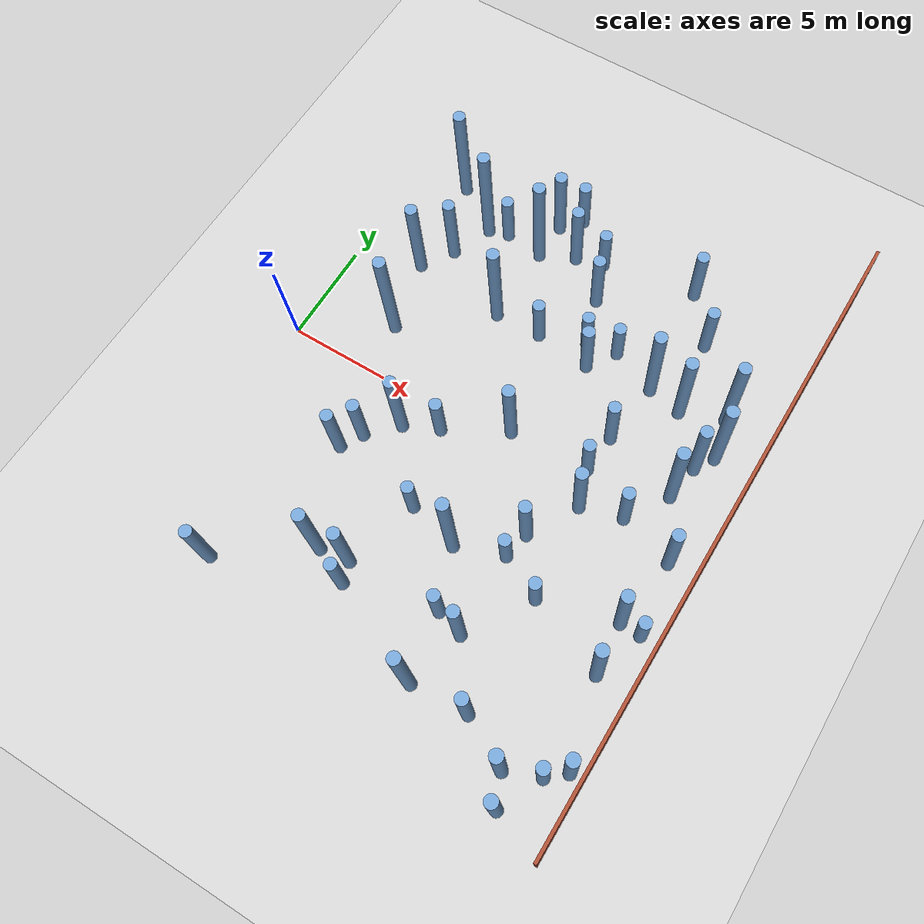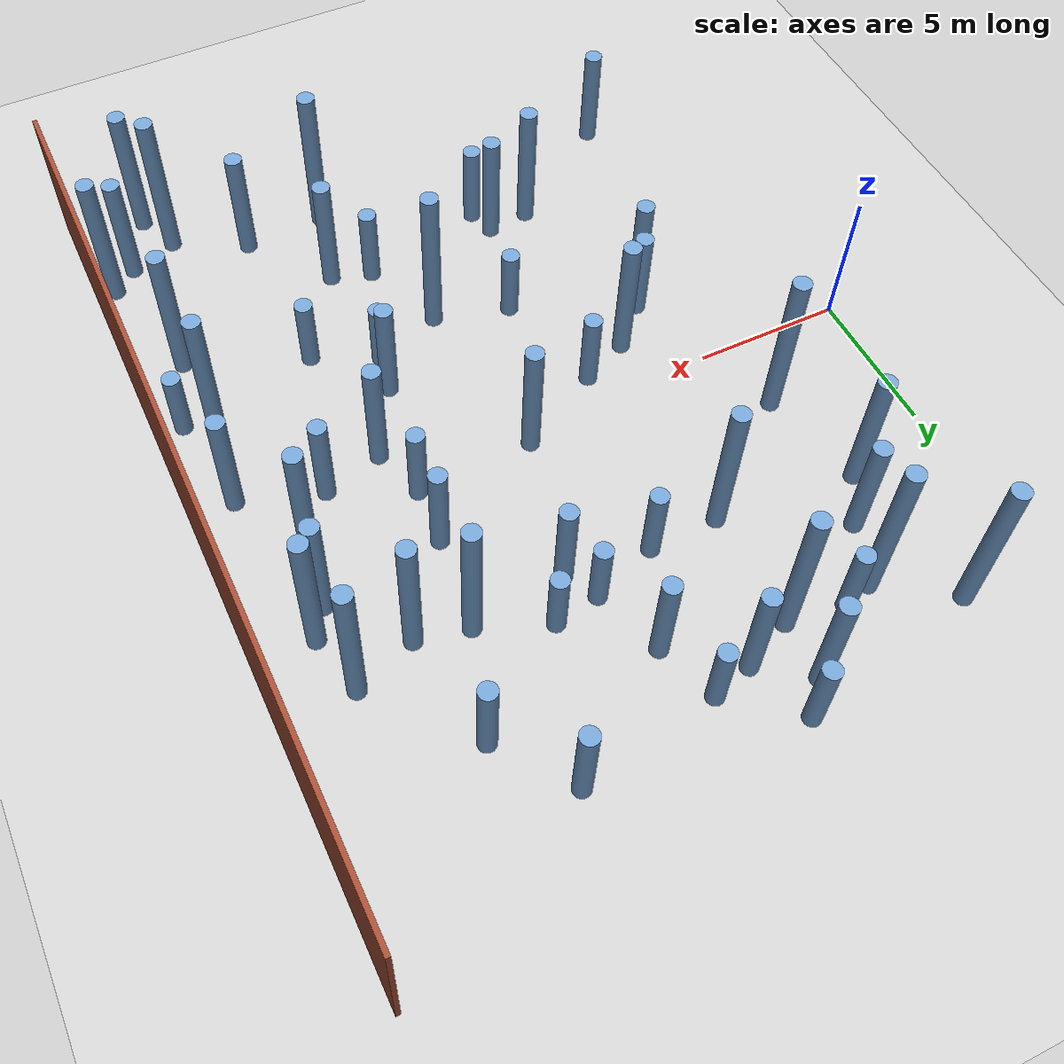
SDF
<sdf version="1.6">
 <world name="random_cylinder_world">
  <model name="ground_plane">
   <static>1</static>
   <link name="link">
    <collision name="collision">
     <geometry><plane><normal>0 0 1</normal><size>55.300000 55.300000</size></plane></geometry>
    </collision>
    <visual name="visual">
     <geometry><plane><normal>0 0 1</normal><size>55.300000 55.300000</size></plane></geometry>
     <material>
      <script><uri>file://media/materials/scripts/gazebo.material</uri><name>Gazebo/Grey</name></script>
     </material>
    </visual>
   </link>
  </model>
  <model name="wall_east">
   <static>1</static>
   <pose>22.575000 0.000000 2.500000 0 0 0</pose>
   <link name="link">
    <collision name="collision">
     <geometry><box><size>0.150000 30.000000 5.000000</size></box></geometry>
    </collision>
    <visual name="visual">
     <geometry><box><size>0.150000 30.000000 5.000000</size></box></geometry>
     <material>
      <script><uri>file://media/materials/scripts/gazebo.material</uri><name>Gazebo/Bricks</name></script>
     </material>
    </visual>
   </link>
  </model>
  <model name="cylinder_0001">
   <static>1</static>
   <pose>20.139858 6.363656 2.768641 0 0 0</pose>
   <link name="link">
    <collision name="collision">
     <geometry><cylinder><radius>0.300000</radius><length>5.537282</length></cylinder></geometry>
    </collision>
    <visual name="visual">
     <geometry><cylinder><radius>0.300000</radius><length>5.537282</length></cylinder></geometry>
     <material><ambient>0.447 0.624 0.812 1</ambient><diffuse>0.447 0.624 0.812 1</diffuse></material>
    </visual>
   </link>
  </model>
  <model name="cylinder_0004">
   <static>1</static>
   <pose>9.927123 -4.739425 1.340808 0 0 0</pose>
   <link name="link">
    <collision name="collision">
     <geometry><cylinder><radius>0.300000</radius><length>2.681615</length></cylinder></geometry>
    </collision>
    <visual name="visual">
     <geometry><cylinder><radius>0.300000</radius><length>2.681615</length></cylinder></geometry>
     <material><ambient>0.447 0.624 0.812 1</ambient><diffuse>0.447 0.624 0.812 1</diffuse></material>
    </visual>
   </link>
  </model>
  <model name="cylinder_0005">
   <static>1</static>
   <pose>2.663205 11.211086 2.849889 0 0 0</pose>
   <link name="link">
    <collision name="collision">
     <geometry><cylinder><radius>0.300000</radius><length>5.699777</length></cylinder></geometry>
    </collision>
    <visual name="visual">
     <geometry><cylinder><radius>0.300000</radius><length>5.699777</length></cylinder></geometry>
     <material><ambient>0.447 0.624 0.812 1</ambient><diffuse>0.447 0.624 0.812 1</diffuse></material>
    </visual>
   </link>
  </model>
  <model name="cylinder_0009">
   <static>1</static>
   <pose>17.468596 9.387879 1.656072 0 0 0</pose>
   <link name="link">
    <collision name="collision">
     <geometry><cylinder><radius>0.300000</radius><length>3.312144</length></cylinder></geometry>
    </collision>
    <visual name="visual">
     <geometry><cylinder><radius>0.300000</radius><length>3.312144</length></cylinder></geometry>
     <material><ambient>0.447 0.624 0.812 1</ambient><diffuse>0.447 0.624 0.812 1</diffuse></material>
    </visual>
   </link>
  </model>
  <model name="cylinder_0010">
   <static>1</static>
   <pose>15.036488 -3.265975 1.978389 0 0 0</pose>
   <link name="link">
    <collision name="collision">
     <geometry><cylinder><radius>0.300000</radius><length>3.956779</length></cylinder></geometry>
    </collision>
    <visual name="visual">
     <geometry><cylinder><radius>0.300000</radius><length>3.956779</length></cylinder></geometry>
     <material><ambient>0.447 0.624 0.812 1</ambient><diffuse>0.447 0.624 0.812 1</diffuse></material>
    </visual>
   </link>
  </model>
  <model name="cylinder_0011">
   <static>1</static>
   <pose>14.783443 -4.570495 1.250010 0 0 0</pose>
   <link name="link">
    <collision name="collision">
     <geometry><cylinder><radius>0.300000</radius><length>2.500019</length></cylinder></geometry>
    </collision>
    <visual name="visual">
     <geometry><cylinder><radius>0.300000</radius><length>2.500019</length></cylinder></geometry>
     <material><ambient>0.447 0.624 0.812 1</ambient><diffuse>0.447 0.624 0.812 1</diffuse></material>
    </visual>
   </link>
  </model>
  <model name="cylinder_0013">
   <static>1</static>
   <pose>18.416783 -0.333910 1.733071 0 0 0</pose>
   <link name="link">
    <collision name="collision">
     <geometry><cylinder><radius>0.300000</radius><length>3.466142</length></cylinder></geometry>
    </collision>
    <visual name="visual">
     <geometry><cylinder><radius>0.300000</radius><length>3.466142</length></cylinder></geometry>
     <material><ambient>0.447 0.624 0.812 1</ambient><diffuse>0.447 0.624 0.812 1</diffuse></material>
    </visual>
   </link>
  </model>
  <model name="cylinder_0017">
   <static>1</static>
   <pose>11.004103 10.858600 1.358218 0 0 0</pose>
   <link name="link">
    <collision name="collision">
     <geometry><cylinder><radius>0.300000</radius><length>2.716435</length></cylinder></geometry>
    </collision>
    <visual name="visual">
     <geometry><cylinder><radius>0.300000</radius><length>2.716435</length></cylinder></geometry>
     <material><ambient>0.447 0.624 0.812 1</ambient><diffuse>0.447 0.624 0.812 1</diffuse></material>
    </visual>
   </link>
  </model>
  <model name="cylinder_0020">
   <static>1</static>
   <pose>7.248783 -1.651230 2.391151 0 0 0</pose>
   <link name="link">
    <collision name="collision">
     <geometry><cylinder><radius>0.300000</radius><length>4.782302</length></cylinder></geometry>
    </collision>
    <visual name="visual">
     <geometry><cylinder><radius>0.300000</radius><length>4.782302</length></cylinder></geometry>
     <material><ambient>0.447 0.624 0.812 1</ambient><diffuse>0.447 0.624 0.812 1</diffuse></material>
    </visual>
   </link>
  </model>
  <model name="cylinder_0022">
   <static>1</static>
   <pose>15.695493 11.681830 1.734286 0 0 0</pose>
   <link name="link">
    <collision name="collision">
     <geometry><cylinder><radius>0.300000</radius><length>3.468573</length></cylinder></geometry>
    </collision>
    <visual name="visual">
     <geometry><cylinder><radius>0.300000</radius><length>3.468573</length></cylinder></geometry>
     <material><ambient>0.447 0.624 0.812 1</ambient><diffuse>0.447 0.624 0.812 1</diffuse></material>
    </visual>
   </link>
  </model>
  <model name="cylinder_0031">
   <static>1</static>
   <pose>17.047492 -11.327654 2.090872 0 0 0</pose>
   <link name="link">
    <collision name="collision">
     <geometry><cylinder><radius>0.300000</radius><length>4.181744</length></cylinder></geometry>
    </collision>
    <visual name="visual">
     <geometry><cylinder><radius>0.300000</radius><length>4.181744</length></cylinder></geometry>
     <material><ambient>0.447 0.624 0.812 1</ambient><diffuse>0.447 0.624 0.812 1</diffuse></material>
    </visual>
   </link>
  </model>
  <model name="cylinder_0033">
   <static>1</static>
   <pose>14.023453 6.857236 1.284324 0 0 0</pose>
   <link name="link">
    <collision name="collision">
     <geometry><cylinder><radius>0.300000</radius><length>2.568647</length></cylinder></geometry>
    </collision>
    <visual name="visual">
     <geometry><cylinder><radius>0.300000</radius><length>2.568647</length></cylinder></geometry>
     <material><ambient>0.447 0.624 0.812 1</ambient><diffuse>0.447 0.624 0.812 1</diffuse></material>
    </visual>
   </link>
  </model>
  <model name="cylinder_0034">
   <static>1</static>
   <pose>20.016353 3.430274 2.229204 0 0 0</pose>
   <link name="link">
    <collision name="collision">
     <geometry><cylinder><radius>0.300000</radius><length>4.458408</length></cylinder></geometry>
    </collision>
    <visual name="visual">
     <geometry><cylinder><radius>0.300000</radius><length>4.458408</length></cylinder></geometry>
     <material><ambient>0.447 0.624 0.812 1</ambient><diffuse>0.447 0.624 0.812 1</diffuse></material>
    </visual>
   </link>
  </model>
  <model name="cylinder_0035">
   <static>1</static>
   <pose>7.945790 9.702905 2.818441 0 0 0</pose>
   <link name="link">
    <collision name="collision">
     <geometry><cylinder><radius>0.300000</radius><length>5.636881</length></cylinder></geometry>
    </collision>
    <visual name="visual">
     <geometry><cylinder><radius>0.300000</radius><length>5.636881</length></cylinder></geometry>
     <material><ambient>0.447 0.624 0.812 1</ambient><diffuse>0.447 0.624 0.812 1</diffuse></material>
    </visual>
   </link>
  </model>
  <model name="cylinder_0036">
   <static>1</static>
   <pose>14.237618 -11.517587 2.812331 0 0 0</pose>
   <link name="link">
    <collision name="collision">
     <geometry><cylinder><radius>0.300000</radius><length>5.624662</length></cylinder></geometry>
    </collision>
    <visual name="visual">
     <geometry><cylinder><radius>0.300000</radius><length>5.624662</length></cylinder></geometry>
     <material><ambient>0.447 0.624 0.812 1</ambient><diffuse>0.447 0.624 0.812 1</diffuse></material>
    </visual>
   </link>
  </model>
  <model name="cylinder_0039">
   <static>1</static>
   <pose>9.200802 -9.349303 1.549058 0 0 0</pose>
   <link name="link">
    <collision name="collision">
     <geometry><cylinder><radius>0.300000</radius><length>3.098116</length></cylinder></geometry>
    </collision>
    <visual name="visual">
     <geometry><cylinder><radius>0.300000</radius><length>3.098116</length></cylinder></geometry>
     <material><ambient>0.447 0.624 0.812 1</ambient><diffuse>0.447 0.624 0.812 1</diffuse></material>
    </visual>
   </link>
  </model>
  <model name="cylinder_0040">
   <static>1</static>
   <pose>13.585540 -8.233521 1.465262 0 0 0</pose>
   <link name="link">
    <collision name="collision">
     <geometry><cylinder><radius>0.300000</radius><length>2.930525</length></cylinder></geometry>
    </collision>
    <visual name="visual">
     <geometry><cylinder><radius>0.300000</radius><length>2.930525</length></cylinder></geometry>
     <material><ambient>0.447 0.624 0.812 1</ambient><diffuse>0.447 0.624 0.812 1</diffuse></material>
    </visual>
   </link>
  </model>
  <model name="cylinder_0041">
   <static>1</static>
   <pose>7.439905 -8.566046 2.392277 0 0 0</pose>
   <link name="link">
    <collision name="collision">
     <geometry><cylinder><radius>0.300000</radius><length>4.784553</length></cylinder></geometry>
    </collision>
    <visual name="visual">
     <geometry><cylinder><radius>0.300000</radius><length>4.784553</length></cylinder></geometry>
     <material><ambient>0.447 0.624 0.812 1</ambient><diffuse>0.447 0.624 0.812 1</diffuse></material>
    </visual>
   </link>
  </model>
  <model name="cylinder_0042">
   <static>1</static>
   <pose>21.940533 -11.191376 2.569427 0 0 0</pose>
   <link name="link">
    <collision name="collision">
     <geometry><cylinder><radius>0.300000</radius><length>5.138855</length></cylinder></geometry>
    </collision>
    <visual name="visual">
     <geometry><cylinder><radius>0.300000</radius><length>5.138855</length></cylinder></geometry>
     <material><ambient>0.447 0.624 0.812 1</ambient><diffuse>0.447 0.624 0.812 1</diffuse></material>
    </visual>
   </link>
  </model>
  <model name="cylinder_0045">
   <static>1</static>
   <pose>14.944226 -8.639199 2.201906 0 0 0</pose>
   <link name="link">
    <collision name="collision">
     <geometry><cylinder><radius>0.300000</radius><length>4.403812</length></cylinder></geometry>
    </collision>
    <visual name="visual">
     <geometry><cylinder><radius>0.300000</radius><length>4.403812</length></cylinder></geometry>
     <material><ambient>0.447 0.624 0.812 1</ambient><diffuse>0.447 0.624 0.812 1</diffuse></material>
    </visual>
   </link>
  </model>
  <model name="cylinder_0047">
   <static>1</static>
   <pose>5.001846 9.655285 2.954631 0 0 0</pose>
   <link name="link">
    <collision name="collision">
     <geometry><cylinder><radius>0.300000</radius><length>5.909263</length></cylinder></geometry>
    </collision>
    <visual name="visual">
     <geometry><cylinder><radius>0.300000</radius><length>5.909263</length></cylinder></geometry>
     <material><ambient>0.447 0.624 0.812 1</ambient><diffuse>0.447 0.624 0.812 1</diffuse></material>
    </visual>
   </link>
  </model>
  <model name="cylinder_0048">
   <static>1</static>
   <pose>21.664302 -4.645713 1.287938 0 0 0</pose>
   <link name="link">
    <collision name="collision">
     <geometry><cylinder><radius>0.300000</radius><length>2.575876</length></cylinder></geometry>
    </collision>
    <visual name="visual">
     <geometry><cylinder><radius>0.300000</radius><length>2.575876</length></cylinder></geometry>
     <material><ambient>0.447 0.624 0.812 1</ambient><diffuse>0.447 0.624 0.812 1</diffuse></material>
    </visual>
   </link>
  </model>
  <model name="cylinder_0050">
   <static>1</static>
   <pose>8.910482 -8.380057 2.096227 0 0 0</pose>
   <link name="link">
    <collision name="collision">
     <geometry><cylinder><radius>0.300000</radius><length>4.192455</length></cylinder></geometry>
    </collision>
    <visual name="visual">
     <geometry><cylinder><radius>0.300000</radius><length>4.192455</length></cylinder></geometry>
     <material><ambient>0.447 0.624 0.812 1</ambient><diffuse>0.447 0.624 0.812 1</diffuse></material>
    </visual>
   </link>
  </model>
  <model name="cylinder_0052">
   <static>1</static>
   <pose>13.090600 5.490116 1.765017 0 0 0</pose>
   <link name="link">
    <collision name="collision">
     <geometry><cylinder><radius>0.300000</radius><length>3.530033</length></cylinder></geometry>
    </collision>
    <visual name="visual">
     <geometry><cylinder><radius>0.300000</radius><length>3.530033</length></cylinder></geometry>
     <material><ambient>0.447 0.624 0.812 1</ambient><diffuse>0.447 0.624 0.812 1</diffuse></material>
    </visual>
   </link>
  </model>
  <model name="cylinder_0053">
   <static>1</static>
   <pose>18.060938 5.605727 2.590475 0 0 0</pose>
   <link name="link">
    <collision name="collision">
     <geometry><cylinder><radius>0.300000</radius><length>5.180949</length></cylinder></geometry>
    </collision>
    <visual name="visual">
     <geometry><cylinder><radius>0.300000</radius><length>5.180949</length></cylinder></geometry>
     <material><ambient>0.447 0.624 0.812 1</ambient><diffuse>0.447 0.624 0.812 1</diffuse></material>
    </visual>
   </link>
  </model>
  <model name="cylinder_0054">
   <static>1</static>
   <pose>11.711624 8.874902 1.858073 0 0 0</pose>
   <link name="link">
    <collision name="collision">
     <geometry><cylinder><radius>0.300000</radius><length>3.716147</length></cylinder></geometry>
    </collision>
    <visual name="visual">
     <geometry><cylinder><radius>0.300000</radius><length>3.716147</length></cylinder></geometry>
     <material><ambient>0.447 0.624 0.812 1</ambient><diffuse>0.447 0.624 0.812 1</diffuse></material>
    </visual>
   </link>
  </model>
  <model name="cylinder_0057">
   <static>1</static>
   <pose>20.599946 4.375937 2.688642 0 0 0</pose>
   <link name="link">
    <collision name="collision">
     <geometry><cylinder><radius>0.300000</radius><length>5.377285</length></cylinder></geometry>
    </collision>
    <visual name="visual">
     <geometry><cylinder><radius>0.300000</radius><length>5.377285</length></cylinder></geometry>
     <material><ambient>0.447 0.624 0.812 1</ambient><diffuse>0.447 0.624 0.812 1</diffuse></material>
    </visual>
   </link>
  </model>
  <model name="cylinder_0058">
   <static>1</static>
   <pose>8.900745 -0.895415 1.473377 0 0 0</pose>
   <link name="link">
    <collision name="collision">
     <geometry><cylinder><radius>0.300000</radius><length>2.946754</length></cylinder></geometry>
    </collision>
    <visual name="visual">
     <geometry><cylinder><radius>0.300000</radius><length>2.946754</length></cylinder></geometry>
     <material><ambient>0.447 0.624 0.812 1</ambient><diffuse>0.447 0.624 0.812 1</diffuse></material>
    </visual>
   </link>
  </model>
  <model name="cylinder_0060">
   <static>1</static>
   <pose>4.175427 7.676862 2.033295 0 0 0</pose>
   <link name="link">
    <collision name="collision">
     <geometry><cylinder><radius>0.300000</radius><length>4.066590</length></cylinder></geometry>
    </collision>
    <visual name="visual">
     <geometry><cylinder><radius>0.300000</radius><length>4.066590</length></cylinder></geometry>
     <material><ambient>0.447 0.624 0.812 1</ambient><diffuse>0.447 0.624 0.812 1</diffuse></material>
    </visual>
   </link>
  </model>
  <model name="cylinder_0061">
   <static>1</static>
   <pose>21.090075 -11.917934 2.075363 0 0 0</pose>
   <link name="link">
    <collision name="collision">
     <geometry><cylinder><radius>0.300000</radius><length>4.150726</length></cylinder></geometry>
    </collision>
    <visual name="visual">
     <geometry><cylinder><radius>0.300000</radius><length>4.150726</length></cylinder></geometry>
     <material><ambient>0.447 0.624 0.812 1</ambient><diffuse>0.447 0.624 0.812 1</diffuse></material>
    </visual>
   </link>
  </model>
  <model name="cylinder_0063">
   <static>1</static>
   <pose>16.910847 -5.582342 1.360139 0 0 0</pose>
   <link name="link">
    <collision name="collision">
     <geometry><cylinder><radius>0.300000</radius><length>2.720278</length></cylinder></geometry>
    </collision>
    <visual name="visual">
     <geometry><cylinder><radius>0.300000</radius><length>2.720278</length></cylinder></geometry>
     <material><ambient>0.447 0.624 0.812 1</ambient><diffuse>0.447 0.624 0.812 1</diffuse></material>
    </visual>
   </link>
  </model>
  <model name="cylinder_0065">
   <static>1</static>
   <pose>12.478478 -5.411082 2.870754 0 0 0</pose>
   <link name="link">
    <collision name="collision">
     <geometry><cylinder><radius>0.300000</radius><length>5.741507</length></cylinder></geometry>
    </collision>
    <visual name="visual">
     <geometry><cylinder><radius>0.300000</radius><length>5.741507</length></cylinder></geometry>
     <material><ambient>0.447 0.624 0.812 1</ambient><diffuse>0.447 0.624 0.812 1</diffuse></material>
    </visual>
   </link>
  </model>
  <model name="cylinder_0066">
   <static>1</static>
   <pose>16.330892 5.953519 2.658412 0 0 0</pose>
   <link name="link">
    <collision name="collision">
     <geometry><cylinder><radius>0.300000</radius><length>5.316825</length></cylinder></geometry>
    </collision>
    <visual name="visual">
     <geometry><cylinder><radius>0.300000</radius><length>5.316825</length></cylinder></geometry>
     <material><ambient>0.447 0.624 0.812 1</ambient><diffuse>0.447 0.624 0.812 1</diffuse></material>
    </visual>
   </link>
  </model>
  <model name="cylinder_0067">
   <static>1</static>
   <pose>21.148448 -1.174023 2.125199 0 0 0</pose>
   <link name="link">
    <collision name="collision">
     <geometry><cylinder><radius>0.300000</radius><length>4.250398</length></cylinder></geometry>
    </collision>
    <visual name="visual">
     <geometry><cylinder><radius>0.300000</radius><length>4.250398</length></cylinder></geometry>
     <material><ambient>0.447 0.624 0.812 1</ambient><diffuse>0.447 0.624 0.812 1</diffuse></material>
    </visual>
   </link>
  </model>
  <model name="cylinder_0069">
   <static>1</static>
   <pose>20.860480 -7.118276 2.628290 0 0 0</pose>
   <link name="link">
    <collision name="collision">
     <geometry><cylinder><radius>0.300000</radius><length>5.256579</length></cylinder></geometry>
    </collision>
    <visual name="visual">
     <geometry><cylinder><radius>0.300000</radius><length>5.256579</length></cylinder></geometry>
     <material><ambient>0.447 0.624 0.812 1</ambient><diffuse>0.447 0.624 0.812 1</diffuse></material>
    </visual>
   </link>
  </model>
  <model name="cylinder_0073">
   <static>1</static>
   <pose>19.721851 1.658450 2.684368 0 0 0</pose>
   <link name="link">
    <collision name="collision">
     <geometry><cylinder><radius>0.300000</radius><length>5.368735</length></cylinder></geometry>
    </collision>
    <visual name="visual">
     <geometry><cylinder><radius>0.300000</radius><length>5.368735</length></cylinder></geometry>
     <material><ambient>0.447 0.624 0.812 1</ambient><diffuse>0.447 0.624 0.812 1</diffuse></material>
    </visual>
   </link>
  </model>
  <model name="cylinder_0075">
   <static>1</static>
   <pose>3.412948 -11.370767 1.855254 0 0 0</pose>
   <link name="link">
    <collision name="collision">
     <geometry><cylinder><radius>0.300000</radius><length>3.710508</length></cylinder></geometry>
    </collision>
    <visual name="visual">
     <geometry><cylinder><radius>0.300000</radius><length>3.710508</length></cylinder></geometry>
     <material><ambient>0.447 0.624 0.812 1</ambient><diffuse>0.447 0.624 0.812 1</diffuse></material>
    </visual>
   </link>
  </model>
  <model name="cylinder_0076">
   <static>1</static>
   <pose>9.632657 10.470132 2.035470 0 0 0</pose>
   <link name="link">
    <collision name="collision">
     <geometry><cylinder><radius>0.300000</radius><length>4.070940</length></cylinder></geometry>
    </collision>
    <visual name="visual">
     <geometry><cylinder><radius>0.300000</radius><length>4.070940</length></cylinder></geometry>
     <material><ambient>0.447 0.624 0.812 1</ambient><diffuse>0.447 0.624 0.812 1</diffuse></material>
    </visual>
   </link>
  </model>
  <model name="cylinder_0077">
   <static>1</static>
   <pose>10.274915 5.791449 1.479228 0 0 0</pose>
   <link name="link">
    <collision name="collision">
     <geometry><cylinder><radius>0.300000</radius><length>2.958456</length></cylinder></geometry>
    </collision>
    <visual name="visual">
     <geometry><cylinder><radius>0.300000</radius><length>2.958456</length></cylinder></geometry>
     <material><ambient>0.447 0.624 0.812 1</ambient><diffuse>0.447 0.624 0.812 1</diffuse></material>
    </visual>
   </link>
  </model>
  <model name="cylinder_0078">
   <static>1</static>
   <pose>7.926416 5.714838 2.733133 0 0 0</pose>
   <link name="link">
    <collision name="collision">
     <geometry><cylinder><radius>0.300000</radius><length>5.466265</length></cylinder></geometry>
    </collision>
    <visual name="visual">
     <geometry><cylinder><radius>0.300000</radius><length>5.466265</length></cylinder></geometry>
     <material><ambient>0.447 0.624 0.812 1</ambient><diffuse>0.447 0.624 0.812 1</diffuse></material>
    </visual>
   </link>
  </model>
  <model name="cylinder_0079">
   <static>1</static>
   <pose>5.937080 -2.959046 1.680953 0 0 0</pose>
   <link name="link">
    <collision name="collision">
     <geometry><cylinder><radius>0.300000</radius><length>3.361906</length></cylinder></geometry>
    </collision>
    <visual name="visual">
     <geometry><cylinder><radius>0.300000</radius><length>3.361906</length></cylinder></geometry>
     <material><ambient>0.447 0.624 0.812 1</ambient><diffuse>0.447 0.624 0.812 1</diffuse></material>
    </visual>
   </link>
  </model>
  <model name="cylinder_0080">
   <static>1</static>
   <pose>5.348630 -4.011370 1.822604 0 0 0</pose>
   <link name="link">
    <collision name="collision">
     <geometry><cylinder><radius>0.300000</radius><length>3.645207</length></cylinder></geometry>
    </collision>
    <visual name="visual">
     <geometry><cylinder><radius>0.300000</radius><length>3.645207</length></cylinder></geometry>
     <material><ambient>0.447 0.624 0.812 1</ambient><diffuse>0.447 0.624 0.812 1</diffuse></material>
    </visual>
   </link>
  </model>
  <model name="cylinder_0082">
   <static>1</static>
   <pose>4.005221 2.583281 2.932006 0 0 0</pose>
   <link name="link">
    <collision name="collision">
     <geometry><cylinder><radius>0.300000</radius><length>5.864012</length></cylinder></geometry>
    </collision>
    <visual name="visual">
     <geometry><cylinder><radius>0.300000</radius><length>5.864012</length></cylinder></geometry>
     <material><ambient>0.447 0.624 0.812 1</ambient><diffuse>0.447 0.624 0.812 1</diffuse></material>
    </visual>
   </link>
  </model>
  <model name="cylinder_0084">
   <static>1</static>
   <pose>5.991270 9.958791 1.450565 0 0 0</pose>
   <link name="link">
    <collision name="collision">
     <geometry><cylinder><radius>0.300000</radius><length>2.901130</length></cylinder></geometry>
    </collision>
    <visual name="visual">
     <geometry><cylinder><radius>0.300000</radius><length>2.901130</length></cylinder></geometry>
     <material><ambient>0.447 0.624 0.812 1</ambient><diffuse>0.447 0.624 0.812 1</diffuse></material>
    </visual>
   </link>
  </model>
  <model name="cylinder_0087">
   <static>1</static>
   <pose>20.097498 -13.987941 2.512432 0 0 0</pose>
   <link name="link">
    <collision name="collision">
     <geometry><cylinder><radius>0.300000</radius><length>5.024864</length></cylinder></geometry>
    </collision>
    <visual name="visual">
     <geometry><cylinder><radius>0.300000</radius><length>5.024864</length></cylinder></geometry>
     <material><ambient>0.447 0.624 0.812 1</ambient><diffuse>0.447 0.624 0.812 1</diffuse></material>
    </visual>
   </link>
  </model>
  <model name="cylinder_0089">
   <static>1</static>
   <pose>15.809945 0.880335 1.526695 0 0 0</pose>
   <link name="link">
    <collision name="collision">
     <geometry><cylinder><radius>0.300000</radius><length>3.053390</length></cylinder></geometry>
    </collision>
    <visual name="visual">
     <geometry><cylinder><radius>0.300000</radius><length>3.053390</length></cylinder></geometry>
     <material><ambient>0.447 0.624 0.812 1</ambient><diffuse>0.447 0.624 0.812 1</diffuse></material>
    </visual>
   </link>
  </model>
  <model name="cylinder_0091">
   <static>1</static>
   <pose>20.640406 -4.624977 2.389747 0 0 0</pose>
   <link name="link">
    <collision name="collision">
     <geometry><cylinder><radius>0.300000</radius><length>4.779494</length></cylinder></geometry>
    </collision>
    <visual name="visual">
     <geometry><cylinder><radius>0.300000</radius><length>4.779494</length></cylinder></geometry>
     <material><ambient>0.447 0.624 0.812 1</ambient><diffuse>0.447 0.624 0.812 1</diffuse></material>
    </visual>
   </link>
  </model>
  <model name="cylinder_0092">
   <static>1</static>
   <pose>3.176400 6.153456 2.417476 0 0 0</pose>
   <link name="link">
    <collision name="collision">
     <geometry><cylinder><radius>0.300000</radius><length>4.834953</length></cylinder></geometry>
    </collision>
    <visual name="visual">
     <geometry><cylinder><radius>0.300000</radius><length>4.834953</length></cylinder></geometry>
     <material><ambient>0.447 0.624 0.812 1</ambient><diffuse>0.447 0.624 0.812 1</diffuse></material>
    </visual>
   </link>
  </model>
  <model name="cylinder_0095">
   <static>1</static>
   <pose>11.811116 0.687795 2.293556 0 0 0</pose>
   <link name="link">
    <collision name="collision">
     <geometry><cylinder><radius>0.300000</radius><length>4.587112</length></cylinder></geometry>
    </collision>
    <visual name="visual">
     <geometry><cylinder><radius>0.300000</radius><length>4.587112</length></cylinder></geometry>
     <material><ambient>0.447 0.624 0.812 1</ambient><diffuse>0.447 0.624 0.812 1</diffuse></material>
    </visual>
   </link>
  </model>
  <model name="cylinder_0100">
   <static>1</static>
   <pose>8.856093 12.577262 1.478350 0 0 0</pose>
   <link name="link">
    <collision name="collision">
     <geometry><cylinder><radius>0.300000</radius><length>2.956700</length></cylinder></geometry>
    </collision>
    <visual name="visual">
     <geometry><cylinder><radius>0.300000</radius><length>2.956700</length></cylinder></geometry>
     <material><ambient>0.447 0.624 0.812 1</ambient><diffuse>0.447 0.624 0.812 1</diffuse></material>
    </visual>
   </link>
  </model>
  <model name="cylinder_0101">
   <static>1</static>
   <pose>8.002954 11.635247 2.122381 0 0 0</pose>
   <link name="link">
    <collision name="collision">
     <geometry><cylinder><radius>0.300000</radius><length>4.244762</length></cylinder></geometry>
    </collision>
    <visual name="visual">
     <geometry><cylinder><radius>0.300000</radius><length>4.244762</length></cylinder></geometry>
     <material><ambient>0.447 0.624 0.812 1</ambient><diffuse>0.447 0.624 0.812 1</diffuse></material>
    </visual>
   </link>
  </model>
  <model name="cylinder_0102">
   <static>1</static>
   <pose>12.493602 6.571044 1.329360 0 0 0</pose>
   <link name="link">
    <collision name="collision">
     <geometry><cylinder><radius>0.300000</radius><length>2.658721</length></cylinder></geometry>
    </collision>
    <visual name="visual">
     <geometry><cylinder><radius>0.300000</radius><length>2.658721</length></cylinder></geometry>
     <material><ambient>0.447 0.624 0.812 1</ambient><diffuse>0.447 0.624 0.812 1</diffuse></material>
    </visual>
   </link>
  </model>
  <model name="cylinder_0103">
   <static>1</static>
   <pose>19.465643 -12.568187 2.821165 0 0 0</pose>
   <link name="link">
    <collision name="collision">
     <geometry><cylinder><radius>0.300000</radius><length>5.642330</length></cylinder></geometry>
    </collision>
    <visual name="visual">
     <geometry><cylinder><radius>0.300000</radius><length>5.642330</length></cylinder></geometry>
     <material><ambient>0.447 0.624 0.812 1</ambient><diffuse>0.447 0.624 0.812 1</diffuse></material>
    </visual>
   </link>
  </model>
  <model name="cylinder_0106">
   <static>1</static>
   <pose>15.940235 2.806317 1.785249 0 0 0</pose>
   <link name="link">
    <collision name="collision">
     <geometry><cylinder><radius>0.300000</radius><length>3.570498</length></cylinder></geometry>
    </collision>
    <visual name="visual">
     <geometry><cylinder><radius>0.300000</radius><length>3.570498</length></cylinder></geometry>
     <material><ambient>0.447 0.624 0.812 1</ambient><diffuse>0.447 0.624 0.812 1</diffuse></material>
    </visual>
   </link>
  </model>
  <model name="cylinder_0107">
   <static>1</static>
   <pose>16.397462 -0.899411 2.181804 0 0 0</pose>
   <link name="link">
    <collision name="collision">
     <geometry><cylinder><radius>0.300000</radius><length>4.363607</length></cylinder></geometry>
    </collision>
    <visual name="visual">
     <geometry><cylinder><radius>0.300000</radius><length>4.363607</length></cylinder></geometry>
     <material><ambient>0.447 0.624 0.812 1</ambient><diffuse>0.447 0.624 0.812 1</diffuse></material>
    </visual>
   </link>
  </model>
 </world>
</sdf>
